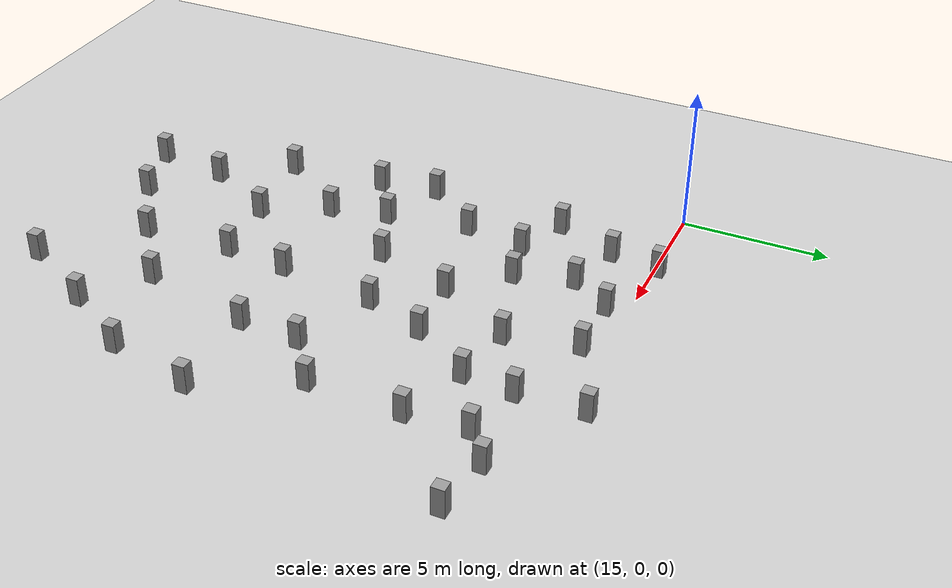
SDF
<sdf version="1.10">
 <world name="obstacle_field">
  <model name="ground_plane">
   <static>true</static>
   <link name="link">
    <collision name="collision">
     <geometry><plane><normal>0 0 1</normal><size>100 100</size></plane></geometry>
     <surface>
      <friction><ode><mu>1000</mu><mu2>1000</mu2><slip1>0</slip1><slip2>0</slip2></ode></friction>
      <bounce><restitution_coefficient>0</restitution_coefficient></bounce>
     </surface>
    </collision>
    <visual name="visual">
     <cast_shadows>false</cast_shadows>
     <geometry><plane><normal>0 0 1</normal><size>100 100</size></plane></geometry>
     <material>
      <script><uri>file://media/materials/scripts/gazebo.material</uri><name>Gazebo/Grey</name></script>
     </material>
    </visual>
    <inertial>
     <mass>1</mass>
     <inertia><ixx>1</ixx><ixy>0</ixy><ixz>0</ixz><iyy>1</iyy><iyz>0</iyz><izz>1</izz></inertia>
    </inertial>
   </link>
  </model>
  <model name="unit_box_0_clone_5_clone_2_clone_1_clone_0">
   <static>true</static>
   <pose>18.311199000446361 0.16262650092666658 0.49999999632621162 5.2857825764613169e-13 5.6755324662750699e-13 -0.00092091398351414771</pose>
   <link name="link">
    <inertial>
     <mass>1</mass>
     <inertia>
      <ixx>0.16666700000000001</ixx>
      <ixy>0</ixy>
      <ixz>0</ixz>
      <iyy>0.16666700000000001</iyy>
      <iyz>0</iyz>
      <izz>0.16666700000000001</izz>
     </inertia>
    </inertial>
    <collision name="collision">
     <geometry><box><size>0.392878 0.42264299999999999 1</size></box></geometry>
    </collision>
    <visual name="visual">
     <geometry><box><size>0.392878 0.42264299999999999 1</size></box></geometry>
     <material>
      <script><name>Gazebo/Grey</name><uri>file://media/materials/scripts/gazebo.material</uri></script>
     </material>
    </visual>
   </link>
  </model>
  <model name="unit_box_0_clone_5_clone_2_clone_1_clone_3">
   <static>true</static>
   <pose>18.098298502233011 -1.5254174986159381 0.49999999632621189 5.3011672150700357e-13 5.7568862095144775e-13 -0.00090185847263046239</pose>
   <link name="link">
    <inertial>
     <mass>1</mass>
     <inertia>
      <ixx>0.16666700000000001</ixx>
      <ixy>0</ixy>
      <ixz>0</ixz>
      <iyy>0.16666700000000001</iyy>
      <iyz>0</iyz>
      <izz>0.16666700000000001</izz>
     </inertia>
    </inertial>
    <collision name="collision">
     <geometry><box><size>0.392878 0.42264299999999999 1</size></box></geometry>
    </collision>
    <visual name="visual">
     <geometry><box><size>0.392878 0.42264299999999999 1</size></box></geometry>
     <material>
      <script><name>Gazebo/Grey</name><uri>file://media/materials/scripts/gazebo.material</uri></script>
     </material>
    </visual>
   </link>
  </model>
  <model name="unit_box_0_clone_5_clone_2_clone_1_clone_4">
   <static>true</static>
   <pose>23.873258590698242 -7.5569562911987296 0.49999427795410156 1.4854402304388796e-06 -4.2134004978030306e-07 -0.00091601113852245078</pose>
   <link name="link">
    <inertial>
     <mass>1</mass>
     <inertia>
      <ixx>0.16666700000000001</ixx>
      <ixy>0</ixy>
      <ixz>0</ixz>
      <iyy>0.16666700000000001</iyy>
      <iyz>0</iyz>
      <izz>0.16666700000000001</izz>
     </inertia>
    </inertial>
    <collision name="collision">
     <geometry><box><size>0.392878 0.42264299999999999 1</size></box></geometry>
    </collision>
    <visual name="visual">
     <geometry><box><size>0.392878 0.42264299999999999 1</size></box></geometry>
     <material>
      <script><name>Gazebo/Grey</name><uri>file://media/materials/scripts/gazebo.material</uri></script>
     </material>
    </visual>
   </link>
  </model>
  <model name="unit_box_0_clone_5_clone_2_clone_1_clone_5">
   <static>true</static>
   <pose>23.281000001394915 -0.62295649997908153 0.49999999632621167 5.3583029871682226e-13 2.0334165817450371e-14 -0.00093094414213781276</pose>
   <link name="link">
    <inertial>
     <mass>1</mass>
     <inertia>
      <ixx>0.16666700000000001</ixx>
      <ixy>0</ixy>
      <ixz>0</ixz>
      <iyy>0.16666700000000001</iyy>
      <iyz>0</iyz>
      <izz>0.16666700000000001</izz>
     </inertia>
    </inertial>
    <collision name="collision">
     <geometry><box><size>0.392878 0.42264299999999999 1</size></box></geometry>
    </collision>
    <visual name="visual">
     <geometry><box><size>0.392878 0.42264299999999999 1</size></box></geometry>
     <material>
      <script><name>Gazebo/Grey</name><uri>file://media/materials/scripts/gazebo.material</uri></script>
     </material>
    </visual>
   </link>
  </model>
  <model name="unit_box_0_clone_5_clone_2_clone_1_clone_6">
   <static>true</static>
   <pose>21.040797998131531 -0.67384499817278598 0.49999999632621017 -5.2764079948247899e-13 5.6934004513067279e-13 -0.00092492595944877634</pose>
   <link name="link">
    <inertial>
     <mass>1</mass>
     <inertia>
      <ixx>0.16666700000000001</ixx>
      <ixy>0</ixy>
      <ixz>0</ixz>
      <iyy>0.16666700000000001</iyy>
      <iyz>0</iyz>
      <izz>0.16666700000000001</izz>
     </inertia>
    </inertial>
    <collision name="collision">
     <geometry><box><size>0.392878 0.42264299999999999 1</size></box></geometry>
    </collision>
    <visual name="visual">
     <geometry><box><size>0.392878 0.42264299999999999 1</size></box></geometry>
     <material>
      <script><name>Gazebo/Grey</name><uri>file://media/materials/scripts/gazebo.material</uri></script>
     </material>
    </visual>
   </link>
  </model>
  <model name="unit_box_0_clone_5_clone_2_clone_1_clone_7">
   <static>true</static>
   <pose>26.085701500914059 0.61762899866997278 0.49999999632621056 5.3403679802891421e-13 -5.7311350069928465e-13 -0.00089584140926725201</pose>
   <link name="link">
    <inertial>
     <mass>1</mass>
     <inertia>
      <ixx>0.16666700000000001</ixx>
      <ixy>0</ixy>
      <ixz>0</ixz>
      <iyy>0.16666700000000001</iyy>
      <iyz>0</iyz>
      <izz>0.16666700000000001</izz>
     </inertia>
    </inertial>
    <collision name="collision">
     <geometry><box><size>0.392878 0.42264299999999999 1</size></box></geometry>
    </collision>
    <visual name="visual">
     <geometry><box><size>0.392878 0.42264299999999999 1</size></box></geometry>
     <material>
      <script><name>Gazebo/Grey</name><uri>file://media/materials/scripts/gazebo.material</uri></script>
     </material>
    </visual>
   </link>
  </model>
  <model name="unit_box_0_clone_5_clone_2_clone_1_clone_9">
   <static>true</static>
   <pose>26.185300500870937 -1.6168790004205584 0.49999999632621162 5.3733576133487237e-13 -5.6738309889700981e-13 -0.00086575953363054287</pose>
   <link name="link">
    <inertial>
     <mass>1</mass>
     <inertia>
      <ixx>0.16666700000000001</ixx>
      <ixy>0</ixy>
      <ixz>0</ixz>
      <iyy>0.16666700000000001</iyy>
      <iyz>0</iyz>
      <izz>0.16666700000000001</izz>
     </inertia>
    </inertial>
    <collision name="collision">
     <geometry><box><size>0.392878 0.42264299999999999 1</size></box></geometry>
    </collision>
    <visual name="visual">
     <geometry><box><size>0.392878 0.42264299999999999 1</size></box></geometry>
     <material>
      <script><name>Gazebo/Grey</name><uri>file://media/materials/scripts/gazebo.material</uri></script>
     </material>
    </visual>
   </link>
  </model>
  <model name="unit_box_0_clone_5_clone_2_clone_1_clone_12">
   <static>true</static>
   <pose>31.367098000865099 -1.5321189982137458 0.49999999632621184 5.291041142967215e-13 5.7289641262581815e-13 -0.00088882180784699897</pose>
   <link name="link">
    <inertial>
     <mass>1</mass>
     <inertia>
      <ixx>0.16666700000000001</ixx>
      <ixy>0</ixy>
      <ixz>0</ixz>
      <iyy>0.16666700000000001</iyy>
      <iyz>0</iyz>
      <izz>0.16666700000000001</izz>
     </inertia>
    </inertial>
    <collision name="collision">
     <geometry><box><size>0.392878 0.42264299999999999 1</size></box></geometry>
    </collision>
    <visual name="visual">
     <geometry><box><size>0.392878 0.42264299999999999 1</size></box></geometry>
     <material>
      <script><name>Gazebo/Grey</name><uri>file://media/materials/scripts/gazebo.material</uri></script>
     </material>
    </visual>
   </link>
  </model>
  <model name="unit_box_0_clone_5_clone_2_clone_1_clone_12_clone_9">
   <static>true</static>
   <pose>20.640901001832749 -4.0006775007126611 0.49999999632621145 5.3467967008348978e-13 -5.6872913633095766e-13 -0.00073145822525521524</pose>
   <link name="link">
    <inertial>
     <mass>1</mass>
     <inertia>
      <ixx>0.16666700000000001</ixx>
      <ixy>0</ixy>
      <ixz>0</ixz>
      <iyy>0.16666700000000001</iyy>
      <iyz>0</iyz>
      <izz>0.16666700000000001</izz>
     </inertia>
    </inertial>
    <collision name="collision">
     <geometry><box><size>0.392878 0.42264299999999999 1</size></box></geometry>
    </collision>
    <visual name="visual">
     <geometry><box><size>0.392878 0.42264299999999999 1</size></box></geometry>
     <material>
      <script><name>Gazebo/Grey</name><uri>file://media/materials/scripts/gazebo.material</uri></script>
     </material>
    </visual>
   </link>
  </model>
  <model name="unit_box_0_clone_5_clone_2_clone_1_clone_12_clone_16">
   <static>true</static>
   <pose>19.594001000354194 -11.308599500689418 0.49999999632621162 5.3766645206512429e-13 -5.6881544714648658e-13 -0.00069339038486996326</pose>
   <link name="link">
    <inertial>
     <mass>1</mass>
     <inertia>
      <ixx>0.16666700000000001</ixx>
      <ixy>0</ixy>
      <ixz>0</ixz>
      <iyy>0.16666700000000001</iyy>
      <iyz>0</iyz>
      <izz>0.16666700000000001</izz>
     </inertia>
    </inertial>
    <collision name="collision">
     <geometry><box><size>0.392878 0.42264299999999999 1</size></box></geometry>
    </collision>
    <visual name="visual">
     <geometry><box><size>0.392878 0.42264299999999999 1</size></box></geometry>
     <material>
      <script><name>Gazebo/Grey</name><uri>file://media/materials/scripts/gazebo.material</uri></script>
     </material>
    </visual>
   </link>
  </model>
  <model name="unit_box_0_clone_5_clone_2_clone_1_clone_12_clone_18">
   <static>true</static>
   <pose>18.644501501040224 -6.4926985010208034 0.49999999632621051 5.332016953749886e-13 -5.7546738734686887e-13 -0.00068738032327562667</pose>
   <link name="link">
    <inertial>
     <mass>1</mass>
     <inertia>
      <ixx>0.16666700000000001</ixx>
      <ixy>0</ixy>
      <ixz>0</ixz>
      <iyy>0.16666700000000001</iyy>
      <iyz>0</iyz>
      <izz>0.16666700000000001</izz>
     </inertia>
    </inertial>
    <collision name="collision">
     <geometry><box><size>0.392878 0.42264299999999999 1</size></box></geometry>
    </collision>
    <visual name="visual">
     <geometry><box><size>0.392878 0.42264299999999999 1</size></box></geometry>
     <material>
      <script><name>Gazebo/Grey</name><uri>file://media/materials/scripts/gazebo.material</uri></script>
     </material>
    </visual>
   </link>
  </model>
  <model name="unit_box_0_clone_5_clone_2_clone_1_clone_12_clone_19">
   <static>true</static>
   <pose>16.999998999652089 -8.4749804993224593 0.49999999632621162 -5.2879107427755035e-13 5.6942391941541495e-13 -0.00068137044347280984</pose>
   <link name="link">
    <inertial>
     <mass>1</mass>
     <inertia>
      <ixx>0.16666700000000001</ixx>
      <ixy>0</ixy>
      <ixz>0</ixz>
      <iyy>0.16666700000000001</iyy>
      <iyz>0</iyz>
      <izz>0.16666700000000001</izz>
     </inertia>
    </inertial>
    <collision name="collision">
     <geometry><box><size>0.392878 0.42264299999999999 1</size></box></geometry>
    </collision>
    <visual name="visual">
     <geometry><box><size>0.392878 0.42264299999999999 1</size></box></geometry>
     <material>
      <script><name>Gazebo/Grey</name><uri>file://media/materials/scripts/gazebo.material</uri></script>
     </material>
    </visual>
   </link>
  </model>
  <model name="unit_box_0_clone_5_clone_2_clone_1_clone_12_clone_29">
   <static>true</static>
   <pose>21.330398000696391 -8.4317289985715576 0.49999999632621178 5.2813428387685768e-13 5.7507571026676437e-13 -0.00071142162369468981</pose>
   <link name="link">
    <inertial>
     <mass>1</mass>
     <inertia>
      <ixx>0.16666700000000001</ixx>
      <ixy>0</ixy>
      <ixz>0</ixz>
      <iyy>0.16666700000000001</iyy>
      <iyz>0</iyz>
      <izz>0.16666700000000001</izz>
     </inertia>
    </inertial>
    <collision name="collision">
     <geometry><box><size>0.392878 0.42264299999999999 1</size></box></geometry>
    </collision>
    <visual name="visual">
     <geometry><box><size>0.392878 0.42264299999999999 1</size></box></geometry>
     <material>
      <script><name>Gazebo/Grey</name><uri>file://media/materials/scripts/gazebo.material</uri></script>
     </material>
    </visual>
   </link>
  </model>
  <model name="unit_box_0_clone_5_clone_2_clone_1_clone_12_clone_30">
   <static>true</static>
   <pose>24.644801998940963 -5.4505315014393894 0.49999999632621073 -5.3185106452799423e-13 -5.7490668766617165e-13 -0.00071542878687070493</pose>
   <link name="link">
    <inertial>
     <mass>1</mass>
     <inertia>
      <ixx>0.16666700000000001</ixx>
      <ixy>0</ixy>
      <ixz>0</ixz>
      <iyy>0.16666700000000001</iyy>
      <iyz>0</iyz>
      <izz>0.16666700000000001</izz>
     </inertia>
    </inertial>
    <collision name="collision">
     <geometry><box><size>0.392878 0.42264299999999999 1</size></box></geometry>
    </collision>
    <visual name="visual">
     <geometry><box><size>0.392878 0.42264299999999999 1</size></box></geometry>
     <material>
      <script><name>Gazebo/Grey</name><uri>file://media/materials/scripts/gazebo.material</uri></script>
     </material>
    </visual>
   </link>
  </model>
  <model name="unit_box_0_clone_5_clone_2_clone_1_clone_12_clone_31">
   <static>true</static>
   <pose>23.787399001797514 -3.036517499261147 0.49999999632621145 5.3344981458932424e-13 5.7662716740162211e-13 -0.00072143968336453568</pose>
   <link name="link">
    <inertial>
     <mass>1</mass>
     <inertia>
      <ixx>0.16666700000000001</ixx>
      <ixy>0</ixy>
      <ixz>0</ixz>
      <iyy>0.16666700000000001</iyy>
      <iyz>0</iyz>
      <izz>0.16666700000000001</izz>
     </inertia>
    </inertial>
    <collision name="collision">
     <geometry><box><size>0.392878 0.42264299999999999 1</size></box></geometry>
    </collision>
    <visual name="visual">
     <geometry><box><size>0.392878 0.42264299999999999 1</size></box></geometry>
     <material>
      <script><name>Gazebo/Grey</name><uri>file://media/materials/scripts/gazebo.material</uri></script>
     </material>
    </visual>
   </link>
  </model>
  <model name="unit_box_0_clone_5_clone_2_clone_1_clone_12_clone_34">
   <static>true</static>
   <pose>23.442300499268288 -10.969301000376538 0.49999999632621162 -5.3630966428112107e-13 -5.6894763179709956e-13 -0.00073646770913824344</pose>
   <link name="link">
    <inertial>
     <mass>1</mass>
     <inertia>
      <ixx>0.16666700000000001</ixx>
      <ixy>0</ixy>
      <ixz>0</ixz>
      <iyy>0.16666700000000001</iyy>
      <iyz>0</iyz>
      <izz>0.16666700000000001</izz>
     </inertia>
    </inertial>
    <collision name="collision">
     <geometry><box><size>0.392878 0.42264299999999999 1</size></box></geometry>
    </collision>
    <visual name="visual">
     <geometry><box><size>0.392878 0.42264299999999999 1</size></box></geometry>
     <material>
      <script><name>Gazebo/Grey</name><uri>file://media/materials/scripts/gazebo.material</uri></script>
     </material>
    </visual>
   </link>
  </model>
  <model name="unit_box_0_clone_5_clone_2_clone_1_clone_12_clone_35">
   <static>true</static>
   <pose>22.278800999638722 -5.6615305007441901 0.49999999632621162 -5.293100226758415e-13 -5.7401370914241636e-13 -0.00074047538127109509</pose>
   <link name="link">
    <inertial>
     <mass>1</mass>
     <inertia>
      <ixx>0.16666700000000001</ixx>
      <ixy>0</ixy>
      <ixz>0</ixz>
      <iyy>0.16666700000000001</iyy>
      <iyz>0</iyz>
      <izz>0.16666700000000001</izz>
     </inertia>
    </inertial>
    <collision name="collision">
     <geometry><box><size>0.392878 0.42264299999999999 1</size></box></geometry>
    </collision>
    <visual name="visual">
     <geometry><box><size>0.392878 0.42264299999999999 1</size></box></geometry>
     <material>
      <script><name>Gazebo/Grey</name><uri>file://media/materials/scripts/gazebo.material</uri></script>
     </material>
    </visual>
   </link>
  </model>
  <model name="unit_box_0_clone_5_clone_2_clone_1_clone_12_clone_36">
   <static>true</static>
   <pose>17.211699001867061 -3.6460574992317079 0.49999999632621145 5.2943337847244729e-13 5.7143542931610204e-13 -0.00074949295823425186</pose>
   <link name="link">
    <inertial>
     <mass>1</mass>
     <inertia>
      <ixx>0.16666700000000001</ixx>
      <ixy>0</ixy>
      <ixz>0</ixz>
      <iyy>0.16666700000000001</iyy>
      <iyz>0</iyz>
      <izz>0.16666700000000001</izz>
     </inertia>
    </inertial>
    <collision name="collision">
     <geometry><box><size>0.392878 0.42264299999999999 1</size></box></geometry>
    </collision>
    <visual name="visual">
     <geometry><box><size>0.392878 0.42264299999999999 1</size></box></geometry>
     <material>
      <script><name>Gazebo/Grey</name><uri>file://media/materials/scripts/gazebo.material</uri></script>
     </material>
    </visual>
   </link>
  </model>
  <model name="unit_box_0_clone_5_clone_2_clone_1_clone_12_clone_37">
   <static>true</static>
   <pose>17.311000001141419 -10.490998499986141 0.49999999632621167 5.3145632473799997e-13 1.1139890237868165e-14 -0.0007615170398483248</pose>
   <link name="link">
    <inertial>
     <mass>1</mass>
     <inertia>
      <ixx>0.16666700000000001</ixx>
      <ixy>0</ixy>
      <ixz>0</ixz>
      <iyy>0.16666700000000001</iyy>
      <iyz>0</iyz>
      <izz>0.16666700000000001</izz>
     </inertia>
    </inertial>
    <collision name="collision">
     <geometry><box><size>0.392878 0.42264299999999999 1</size></box></geometry>
    </collision>
    <visual name="visual">
     <geometry><box><size>0.392878 0.42264299999999999 1</size></box></geometry>
     <material>
      <script><name>Gazebo/Grey</name><uri>file://media/materials/scripts/gazebo.material</uri></script>
     </material>
    </visual>
   </link>
  </model>
  <model name="unit_box_0_clone_5_clone_2_clone_1_clone_12_clone_38">
   <static>true</static>
   <pose>17.620699001542572 -13.88719799920784 0.49999999632621001 5.2802806160887275e-13 5.7021391650020716e-13 -0.00077554613085212775</pose>
   <link name="link">
    <inertial>
     <mass>1</mass>
     <inertia>
      <ixx>0.16666700000000001</ixx>
      <ixy>0</ixy>
      <ixz>0</ixz>
      <iyy>0.16666700000000001</iyy>
      <iyz>0</iyz>
      <izz>0.16666700000000001</izz>
     </inertia>
    </inertial>
    <collision name="collision">
     <geometry><box><size>0.392878 0.42264299999999999 1</size></box></geometry>
    </collision>
    <visual name="visual">
     <geometry><box><size>0.392878 0.42264299999999999 1</size></box></geometry>
     <material>
      <script><name>Gazebo/Grey</name><uri>file://media/materials/scripts/gazebo.material</uri></script>
     </material>
    </visual>
   </link>
  </model>
  <model name="unit_box_0_clone_5_clone_2_clone_1_clone_12_clone_13_clone_0">
   <static>true</static>
   <pose>20.09529999939566 -2.0596115000037005 0.49999999632621167 -5.3232278680997303e-13 -1.6565863764657464e-15 -0.00040307673030619013</pose>
   <link name="link">
    <inertial>
     <mass>1</mass>
     <inertia>
      <ixx>0.16666700000000001</ixx>
      <ixy>0</ixy>
      <ixz>0</ixz>
      <iyy>0.16666700000000001</iyy>
      <iyz>0</iyz>
      <izz>0.16666700000000001</izz>
     </inertia>
    </inertial>
    <collision name="collision">
     <geometry><box><size>0.392878 0.42264299999999999 1</size></box></geometry>
    </collision>
    <visual name="visual">
     <geometry><box><size>0.392878 0.42264299999999999 1</size></box></geometry>
     <material>
      <script><name>Gazebo/Grey</name><uri>file://media/materials/scripts/gazebo.material</uri></script>
     </material>
    </visual>
   </link>
  </model>
  <model name="unit_box_0_clone_5_clone_2_clone_1_clone_12_clone_13_clone_1">
   <static>true</static>
   <pose>18.998498999797519 -4.3913004996009946 0.49999999632621162 -5.3251178112391205e-13 5.7654996086280073e-13 -0.0004000750280525122</pose>
   <link name="link">
    <inertial>
     <mass>1</mass>
     <inertia>
      <ixx>0.16666700000000001</ixx>
      <ixy>0</ixy>
      <ixz>0</ixz>
      <iyy>0.16666700000000001</iyy>
      <iyz>0</iyz>
      <izz>0.16666700000000001</izz>
     </inertia>
    </inertial>
    <collision name="collision">
     <geometry><box><size>0.392878 0.42264299999999999 1</size></box></geometry>
    </collision>
    <visual name="visual">
     <geometry><box><size>0.392878 0.42264299999999999 1</size></box></geometry>
     <material>
      <script><name>Gazebo/Grey</name><uri>file://media/materials/scripts/gazebo.material</uri></script>
     </material>
    </visual>
   </link>
  </model>
  <model name="unit_box_0_clone_5_clone_2_clone_1_clone_12_clone_13_clone_2">
   <static>true</static>
   <pose>19.155398499205283 -9.3163619994099047 0.49999999632620978 -5.3236205915167764e-13 5.7116548222126685e-13 -0.00039607279252192967</pose>
   <link name="link">
    <inertial>
     <mass>1</mass>
     <inertia>
      <ixx>0.16666700000000001</ixx>
      <ixy>0</ixy>
      <ixz>0</ixz>
      <iyy>0.16666700000000001</iyy>
      <iyz>0</iyz>
      <izz>0.16666700000000001</izz>
     </inertia>
    </inertial>
    <collision name="collision">
     <geometry><box><size>0.392878 0.42264299999999999 1</size></box></geometry>
    </collision>
    <visual name="visual">
     <geometry><box><size>0.392878 0.42264299999999999 1</size></box></geometry>
     <material>
      <script><name>Gazebo/Grey</name><uri>file://media/materials/scripts/gazebo.material</uri></script>
     </material>
    </visual>
   </link>
  </model>
  <model name="unit_box_0_clone_5_clone_2_clone_1_clone_12_clone_13_clone_20">
   <static>true</static>
   <pose>26.661498499342141 -8.5843919995105615 0.49999999632620978 -5.3224928917157104e-13 5.7667202445879261e-13 -0.00032804135709000248</pose>
   <link name="link">
    <inertial>
     <mass>1</mass>
     <inertia>
      <ixx>0.16666700000000001</ixx>
      <ixy>0</ixy>
      <ixz>0</ixz>
      <iyy>0.16666700000000001</iyy>
      <iyz>0</iyz>
      <izz>0.16666700000000001</izz>
     </inertia>
    </inertial>
    <collision name="collision">
     <geometry><box><size>0.392878 0.42264299999999999 1</size></box></geometry>
    </collision>
    <visual name="visual">
     <geometry><box><size>0.392878 0.42264299999999999 1</size></box></geometry>
     <material>
      <script><name>Gazebo/Grey</name><uri>file://media/materials/scripts/gazebo.material</uri></script>
     </material>
    </visual>
   </link>
  </model>
  <model name="unit_box_0_clone_5_clone_2_clone_1_clone_12_clone_13_clone_21">
   <static>true</static>
   <pose>28.366599000014769 -4.1575399996779829 0.49999999632620967 6.1435914570968416e-16 -5.7434049052910999e-13 -0.0003220391358212145</pose>
   <link name="link">
    <inertial>
     <mass>1</mass>
     <inertia>
      <ixx>0.16666700000000001</ixx>
      <ixy>0</ixy>
      <ixz>0</ixz>
      <iyy>0.16666700000000001</iyy>
      <iyz>0</iyz>
      <izz>0.16666700000000001</izz>
     </inertia>
    </inertial>
    <collision name="collision">
     <geometry><box><size>0.392878 0.42264299999999999 1</size></box></geometry>
    </collision>
    <visual name="visual">
     <geometry><box><size>0.392878 0.42264299999999999 1</size></box></geometry>
     <material>
      <script><name>Gazebo/Grey</name><uri>file://media/materials/scripts/gazebo.material</uri></script>
     </material>
    </visual>
   </link>
  </model>
  <model name="unit_box_0_clone_5_clone_2_clone_1_clone_12_clone_13_clone_22">
   <static>true</static>
   <pose>26.031000500321657 -3.3597590001590887 0.49999999632621162 5.3339393120617797e-13 -5.7346042921315408e-13 -0.00032103877123026135</pose>
   <link name="link">
    <inertial>
     <mass>1</mass>
     <inertia>
      <ixx>0.16666700000000001</ixx>
      <ixy>0</ixy>
      <ixz>0</ixz>
      <iyy>0.16666700000000001</iyy>
      <iyz>0</iyz>
      <izz>0.16666700000000001</izz>
     </inertia>
    </inertial>
    <collision name="collision">
     <geometry><box><size>0.392878 0.42264299999999999 1</size></box></geometry>
    </collision>
    <visual name="visual">
     <geometry><box><size>0.392878 0.42264299999999999 1</size></box></geometry>
     <material>
      <script><name>Gazebo/Grey</name><uri>file://media/materials/scripts/gazebo.material</uri></script>
     </material>
    </visual>
   </link>
  </model>
  <model name="unit_box_0_clone_5_clone_2_clone_1_clone_12_clone_13_clone_23">
   <static>true</static>
   <pose>29.362698499358292 -1.2335719995224697 0.49999999632620978 -5.320801908801523e-13 5.7344659873444668e-13 -0.00032003840326530502</pose>
   <link name="link">
    <inertial>
     <mass>1</mass>
     <inertia>
      <ixx>0.16666700000000001</ixx>
      <ixy>0</ixy>
      <ixz>0</ixz>
      <iyy>0.16666700000000001</iyy>
      <iyz>0</iyz>
      <izz>0.16666700000000001</izz>
     </inertia>
    </inertial>
    <collision name="collision">
     <geometry><box><size>0.392878 0.42264299999999999 1</size></box></geometry>
    </collision>
    <visual name="visual">
     <geometry><box><size>0.392878 0.42264299999999999 1</size></box></geometry>
     <material>
      <script><name>Gazebo/Grey</name><uri>file://media/materials/scripts/gazebo.material</uri></script>
     </material>
    </visual>
   </link>
  </model>
  <model name="unit_box_0_clone_5_clone_2_clone_1_clone_12_clone_13_clone_27">
   <static>true</static>
   <pose>20.702098499378458 -13.499201999537254 0.49999999632620978 -5.346404113153495e-13 5.7427966922514596e-13 -0.00031003491320494292</pose>
   <link name="link">
    <inertial>
     <mass>1</mass>
     <inertia>
      <ixx>0.16666700000000001</ixx>
      <ixy>0</ixy>
      <ixz>0</ixz>
      <iyy>0.16666700000000001</iyy>
      <iyz>0</iyz>
      <izz>0.16666700000000001</izz>
     </inertia>
    </inertial>
    <collision name="collision">
     <geometry><box><size>0.392878 0.42264299999999999 1</size></box></geometry>
    </collision>
    <visual name="visual">
     <geometry><box><size>0.392878 0.42264299999999999 1</size></box></geometry>
     <material>
      <script><name>Gazebo/Grey</name><uri>file://media/materials/scripts/gazebo.material</uri></script>
     </material>
    </visual>
   </link>
  </model>
  <model name="unit_box_0_clone_5_clone_2_clone_1_clone_12_clone_13_clone_31">
   <static>true</static>
   <pose>28.220630645751953 -2.0775842666625977 0.49999865889549266 -6.4978999083244213e-08 -1.2995800355518453e-07 -8.9000001256620047e-05</pose>
   <link name="link">
    <inertial>
     <mass>1</mass>
     <inertia>
      <ixx>0.16666700000000001</ixx>
      <ixy>0</ixy>
      <ixz>0</ixz>
      <iyy>0.16666700000000001</iyy>
      <iyz>0</iyz>
      <izz>0.16666700000000001</izz>
     </inertia>
    </inertial>
    <collision name="collision">
     <geometry><box><size>0.392878 0.42264299999999999 1</size></box></geometry>
    </collision>
    <visual name="visual">
     <geometry><box><size>0.392878 0.42264299999999999 1</size></box></geometry>
     <material>
      <script><name>Gazebo/Grey</name><uri>file://media/materials/scripts/gazebo.material</uri></script>
     </material>
    </visual>
   </link>
  </model>
  <model name="unit_box_0_clone_5_clone_2_clone_1_clone_12_clone_13_clone_32">
   <static>true</static>
   <pose>28.303702499905139 -7.3529710002372761 0.49999999632621167 -5.3453134411490995e-13 -5.681008086063166e-13 -9.5001006180934922e-05</pose>
   <link name="link">
    <inertial>
     <mass>1</mass>
     <inertia>
      <ixx>0.16666700000000001</ixx>
      <ixy>0</ixy>
      <ixz>0</ixz>
      <iyy>0.16666700000000001</iyy>
      <iyz>0</iyz>
      <izz>0.16666700000000001</izz>
     </inertia>
    </inertial>
    <collision name="collision">
     <geometry><box><size>0.392878 0.42264299999999999 1</size></box></geometry>
    </collision>
    <visual name="visual">
     <geometry><box><size>0.392878 0.42264299999999999 1</size></box></geometry>
     <material>
      <script><name>Gazebo/Grey</name><uri>file://media/materials/scripts/gazebo.material</uri></script>
     </material>
    </visual>
   </link>
  </model>
  <model name="unit_box_0_clone_5_clone_2_clone_1_clone_12_clone_13_clone_33">
   <static>true</static>
   <pose>29.929600999948068 -10.537000500103742 0.49999999632621162 -5.3781196413616783e-13 -5.778991309387843e-13 -0.00010400131943683429</pose>
   <link name="link">
    <inertial>
     <mass>1</mass>
     <inertia>
      <ixx>0.16666700000000001</ixx>
      <ixy>0</ixy>
      <ixz>0</ixz>
      <iyy>0.16666700000000001</iyy>
      <iyz>0</iyz>
      <izz>0.16666700000000001</izz>
     </inertia>
    </inertial>
    <collision name="collision">
     <geometry><box><size>0.392878 0.42264299999999999 1</size></box></geometry>
    </collision>
    <visual name="visual">
     <geometry><box><size>0.392878 0.42264299999999999 1</size></box></geometry>
     <material>
      <script><name>Gazebo/Grey</name><uri>file://media/materials/scripts/gazebo.material</uri></script>
     </material>
    </visual>
   </link>
  </model>
  <model name="unit_box_0_clone_5_clone_2_clone_1_clone_12_clone_13_clone_34">
   <static>true</static>
   <pose>26.12360199989217 -18.806101000216163 0.49999999632621156 -5.3137445196176064e-13 -5.6765267286185983e-13 -0.00010800147871468305</pose>
   <link name="link">
    <inertial>
     <mass>1</mass>
     <inertia>
      <ixx>0.16666700000000001</ixx>
      <ixy>0</ixy>
      <ixz>0</ixz>
      <iyy>0.16666700000000001</iyy>
      <iyz>0</iyz>
      <izz>0.16666700000000001</izz>
     </inertia>
    </inertial>
    <collision name="collision">
     <geometry><box><size>0.392878 0.42264299999999999 1</size></box></geometry>
    </collision>
    <visual name="visual">
     <geometry><box><size>0.392878 0.42264299999999999 1</size></box></geometry>
     <material>
      <script><name>Gazebo/Grey</name><uri>file://media/materials/scripts/gazebo.material</uri></script>
     </material>
    </visual>
   </link>
  </model>
  <model name="unit_box_0_clone_5_clone_2_clone_1_clone_12_clone_13_clone_35">
   <static>true</static>
   <pose>27.680899500171069 -16.028098499942676 0.49999999632621078 5.2931523703095899e-13 5.7456694253012508e-13 -0.00011400173801902756</pose>
   <link name="link">
    <inertial>
     <mass>1</mass>
     <inertia>
      <ixx>0.16666700000000001</ixx>
      <ixy>0</ixy>
      <ixz>0</ixz>
      <iyy>0.16666700000000001</iyy>
      <iyz>0</iyz>
      <izz>0.16666700000000001</izz>
     </inertia>
    </inertial>
    <collision name="collision">
     <geometry><box><size>0.392878 0.42264299999999999 1</size></box></geometry>
    </collision>
    <visual name="visual">
     <geometry><box><size>0.392878 0.42264299999999999 1</size></box></geometry>
     <material>
      <script><name>Gazebo/Grey</name><uri>file://media/materials/scripts/gazebo.material</uri></script>
     </material>
    </visual>
   </link>
  </model>
  <model name="unit_box_0_clone_5_clone_2_clone_1_clone_12_clone_13_clone_36">
   <static>true</static>
   <pose>26.555500499882989 -10.682201000058376 0.49999999632621162 -5.3754793516358675e-13 -5.7462312631051331e-13 -0.000117001878207337</pose>
   <link name="link">
    <inertial>
     <mass>1</mass>
     <inertia>
      <ixx>0.16666700000000001</ixx>
      <ixy>0</ixy>
      <ixz>0</ixz>
      <iyy>0.16666700000000001</iyy>
      <iyz>0</iyz>
      <izz>0.16666700000000001</izz>
     </inertia>
    </inertial>
    <collision name="collision">
     <geometry><box><size>0.392878 0.42264299999999999 1</size></box></geometry>
    </collision>
    <visual name="visual">
     <geometry><box><size>0.392878 0.42264299999999999 1</size></box></geometry>
     <material>
      <script><name>Gazebo/Grey</name><uri>file://media/materials/scripts/gazebo.material</uri></script>
     </material>
    </visual>
   </link>
  </model>
  <model name="unit_box_0_clone_5_clone_2_clone_1_clone_12_clone_13_clone_37">
   <static>true</static>
   <pose>25.638601499820172 -14.59970150017997 0.49999999632621051 -5.3419790401852559e-13 -5.7688719987761552e-13 -0.00012000203009786529</pose>
   <link name="link">
    <inertial>
     <mass>1</mass>
     <inertia>
      <ixx>0.16666700000000001</ixx>
      <ixy>0</ixy>
      <ixz>0</ixz>
      <iyy>0.16666700000000001</iyy>
      <iyz>0</iyz>
      <izz>0.16666700000000001</izz>
     </inertia>
    </inertial>
    <collision name="collision">
     <geometry><box><size>0.392878 0.42264299999999999 1</size></box></geometry>
    </collision>
    <visual name="visual">
     <geometry><box><size>0.392878 0.42264299999999999 1</size></box></geometry>
     <material>
      <script><name>Gazebo/Grey</name><uri>file://media/materials/scripts/gazebo.material</uri></script>
     </material>
    </visual>
   </link>
  </model>
  <model name="unit_box_0_clone_5_clone_2_clone_1_clone_12_clone_13_clone_38">
   <static>true</static>
   <pose>21.11599850025193 -17.881597999810559 0.49999999632620978 5.2911677261665448e-13 5.7591305762061027e-13 -0.00012600235232210831</pose>
   <link name="link">
    <inertial>
     <mass>1</mass>
     <inertia>
      <ixx>0.16666700000000001</ixx>
      <ixy>0</ixy>
      <ixz>0</ixz>
      <iyy>0.16666700000000001</iyy>
      <iyz>0</iyz>
      <izz>0.16666700000000001</izz>
     </inertia>
    </inertial>
    <collision name="collision">
     <geometry><box><size>0.392878 0.42264299999999999 1</size></box></geometry>
    </collision>
    <visual name="visual">
     <geometry><box><size>0.392878 0.42264299999999999 1</size></box></geometry>
     <material>
      <script><name>Gazebo/Grey</name><uri>file://media/materials/scripts/gazebo.material</uri></script>
     </material>
    </visual>
   </link>
  </model>
  <model name="unit_box_0_clone_5_clone_2_clone_1_clone_12_clone_13_clone_39">
   <static>true</static>
   <pose>23.402199000062822 -16.324099499873835 0.49999999632621162 5.3689751460561889e-13 5.7464072004386797e-13 -0.00012600234557822424</pose>
   <link name="link">
    <inertial>
     <mass>1</mass>
     <inertia>
      <ixx>0.16666700000000001</ixx>
      <ixy>0</ixy>
      <ixz>0</ixz>
      <iyy>0.16666700000000001</iyy>
      <iyz>0</iyz>
      <izz>0.16666700000000001</izz>
     </inertia>
    </inertial>
    <collision name="collision">
     <geometry><box><size>0.392878 0.42264299999999999 1</size></box></geometry>
    </collision>
    <visual name="visual">
     <geometry><box><size>0.392878 0.42264299999999999 1</size></box></geometry>
     <material>
      <script><name>Gazebo/Grey</name><uri>file://media/materials/scripts/gazebo.material</uri></script>
     </material>
    </visual>
   </link>
  </model>
  <model name="unit_box_0_clone_5_clone_2_clone_1_clone_12_clone_13_clone_40">
   <static>true</static>
   <pose>19.238100499871994 -16.084601000064303 0.49999999632621162 -5.3144039974866355e-13 -5.7370249484083231e-13 -0.00012800245900514655</pose>
   <link name="link">
    <inertial>
     <mass>1</mass>
     <inertia>
      <ixx>0.16666700000000001</ixx>
      <ixy>0</ixy>
      <ixz>0</ixz>
      <iyy>0.16666700000000001</iyy>
      <iyz>0</iyz>
      <izz>0.16666700000000001</izz>
     </inertia>
    </inertial>
    <collision name="collision">
     <geometry><box><size>0.392878 0.42264299999999999 1</size></box></geometry>
    </collision>
    <visual name="visual">
     <geometry><box><size>0.392878 0.42264299999999999 1</size></box></geometry>
     <material>
      <script><name>Gazebo/Grey</name><uri>file://media/materials/scripts/gazebo.material</uri></script>
     </material>
    </visual>
   </link>
  </model>
  <model name="unit_box_0_clone_5_clone_2_clone_1_clone_12_clone_13_clone_42">
   <static>true</static>
   <pose>18.887999999862135 -18.630801000000286 0.49999999632620978 -5.3492128789134079e-13 -4.5561224854454734e-17 -0.00013800308020826122</pose>
   <link name="link">
    <inertial>
     <mass>1</mass>
     <inertia>
      <ixx>0.16666700000000001</ixx>
      <ixy>0</ixy>
      <ixz>0</ixz>
      <iyy>0.16666700000000001</iyy>
      <iyz>0</iyz>
      <izz>0.16666700000000001</izz>
     </inertia>
    </inertial>
    <collision name="collision">
     <geometry><box><size>0.392878 0.42264299999999999 1</size></box></geometry>
    </collision>
    <visual name="visual">
     <geometry><box><size>0.392878 0.42264299999999999 1</size></box></geometry>
     <material>
      <script><name>Gazebo/Grey</name><uri>file://media/materials/scripts/gazebo.material</uri></script>
     </material>
    </visual>
   </link>
  </model>
  <model name="unit_box_0_clone_5_clone_2_clone_1_clone_12_clone_13_clone_64">
   <static>true</static>
   <pose>29.203401999702344 -13.546701500398427 0.49999999632621067 -5.307719382420031e-13 -5.7039313444270698e-13 -0.00019900924179669911</pose>
   <link name="link">
    <inertial>
     <mass>1</mass>
     <inertia>
      <ixx>0.16666700000000001</ixx>
      <ixy>0</ixy>
      <ixz>0</ixz>
      <iyy>0.16666700000000001</iyy>
      <iyz>0</iyz>
      <izz>0.16666700000000001</izz>
     </inertia>
    </inertial>
    <collision name="collision">
     <geometry><box><size>0.392878 0.42264299999999999 1</size></box></geometry>
    </collision>
    <visual name="visual">
     <geometry><box><size>0.392878 0.42264299999999999 1</size></box></geometry>
     <material>
      <script><name>Gazebo/Grey</name><uri>file://media/materials/scripts/gazebo.material</uri></script>
     </material>
    </visual>
   </link>
  </model>
  <model name="unit_box_0_clone_5_clone_2_clone_1_clone_12_clone_13_clone_65">
   <static>true</static>
   <pose>23.235801500000839 -13.188400000302952 0.49999999632621167 2.0945254980928264e-16 -5.6986037701778843e-13 -0.00020200966081060687</pose>
   <link name="link">
    <inertial>
     <mass>1</mass>
     <inertia>
      <ixx>0.16666700000000001</ixx>
      <ixy>0</ixy>
      <ixz>0</ixz>
      <iyy>0.16666700000000001</iyy>
      <iyz>0</iyz>
      <izz>0.16666700000000001</izz>
     </inertia>
    </inertial>
    <collision name="collision">
     <geometry><box><size>0.392878 0.42264299999999999 1</size></box></geometry>
    </collision>
    <visual name="visual">
     <geometry><box><size>0.392878 0.42264299999999999 1</size></box></geometry>
     <material>
      <script><name>Gazebo/Grey</name><uri>file://media/materials/scripts/gazebo.material</uri></script>
     </material>
    </visual>
   </link>
  </model>
 </world>
</sdf>
